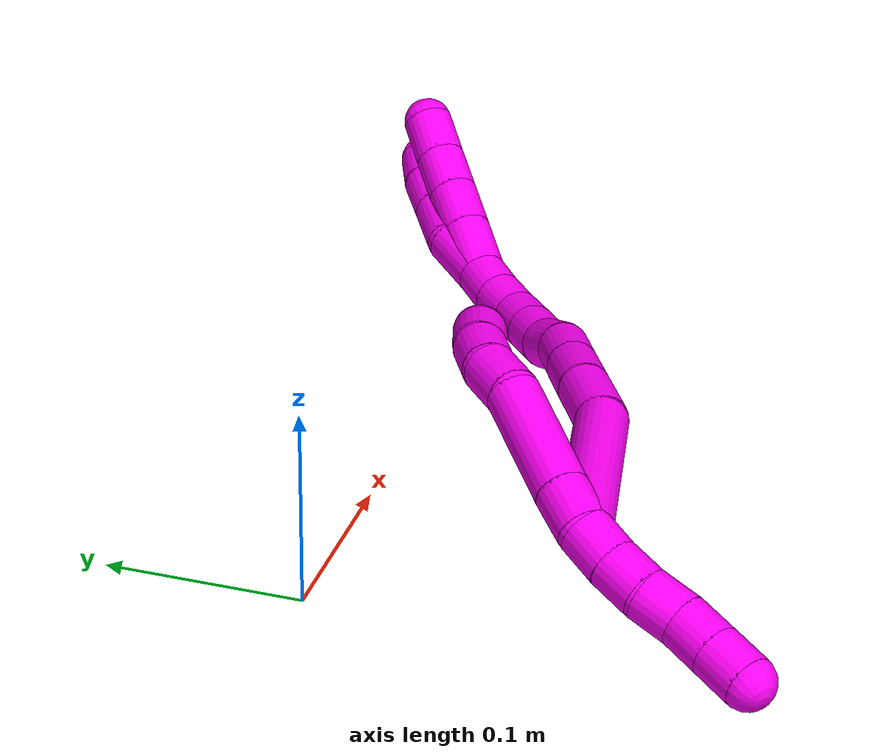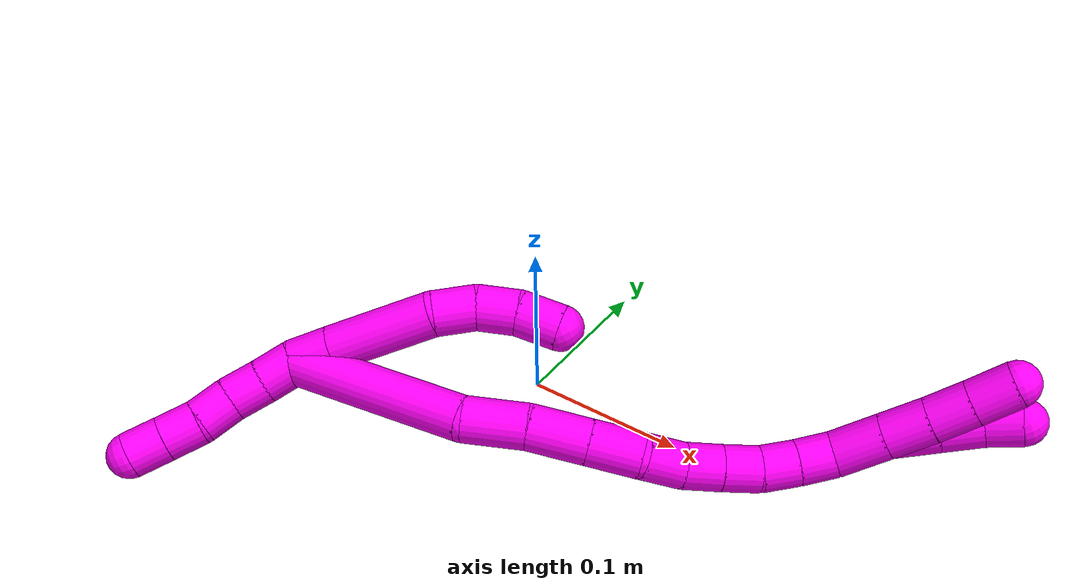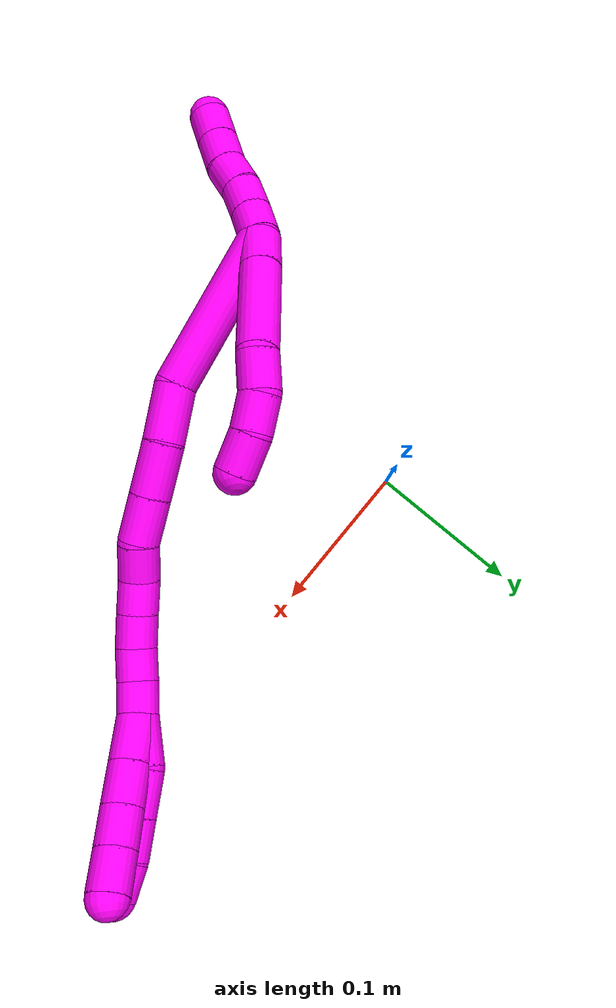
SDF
<sdf version="1.7">
 <world name="default">
  <model name="10">
   <static>0</static>
   <link name="10">
    <collision name="collision-cylinder-e_1_2_8">
     <pose>0.001025 -0.000256 0.011133 0.022969 0.091751 0.001054</pose>
     <geometry><cylinder><radius>0.0125</radius><length>0.022366</length></cylinder></geometry>
     <surface>
      <friction><ode><mu>1.16</mu><mu2>1.16</mu2><slip1>0</slip1><slip2>0</slip2></ode></friction>
      <contact><ode><kp>1e+06</kp><kd>1</kd><max_vel>0</max_vel><min_depth>0.001</min_depth></ode></contact>
     </surface>
    </collision>
    <visual name="visual-cylinder-e_1_2_8">
     <pose>0.001025 -0.000256 0.011133 0.022969 0.091751 0.001054</pose>
     <geometry><cylinder><radius>0.0125</radius><length>0.022366</length></cylinder></geometry>
     <material><ambient>1 0 0.964706 1</ambient></material>
    </visual>
    <collision name="collision-cylinder-e_2_8_9">
     <pose>0.005826 -0.001879 0.050804 0.047898 0.131433 0.003153</pose>
     <geometry><cylinder><radius>0.0125</radius><length>0.057639</length></cylinder></geometry>
     <surface>
      <friction><ode><mu>1.16</mu><mu2>1.16</mu2><slip1>0</slip1><slip2>0</slip2></ode></friction>
      <contact><ode><kp>1e+06</kp><kd>1</kd><max_vel>0</max_vel><min_depth>0.001</min_depth></ode></contact>
     </surface>
    </collision>
    <visual name="visual-cylinder-e_2_8_9">
     <pose>0.005826 -0.001879 0.050804 0.047898 0.131433 0.003153</pose>
     <geometry><cylinder><radius>0.0125</radius><length>0.057639</length></cylinder></geometry>
     <material><ambient>1 0 0.964706 1</ambient></material>
    </visual>
    <collision name="collision-cylinder-e_3_9_10">
     <pose>0.011243 -0.000354 0.090675 -0.249946 0.139301 -0.017528</pose>
     <geometry><cylinder><radius>0.0125</radius><length>0.02362</length></cylinder></geometry>
     <surface>
      <friction><ode><mu>1.16</mu><mu2>1.16</mu2><slip1>0</slip1><slip2>0</slip2></ode></friction>
      <contact><ode><kp>1e+06</kp><kd>1</kd><max_vel>0</max_vel><min_depth>0.001</min_depth></ode></contact>
     </surface>
    </collision>
    <visual name="visual-cylinder-e_3_9_10">
     <pose>0.011243 -0.000354 0.090675 -0.249946 0.139301 -0.017528</pose>
     <geometry><cylinder><radius>0.0125</radius><length>0.02362</length></cylinder></geometry>
     <material><ambient>1 0 0.964706 1</ambient></material>
    </visual>
    <collision name="collision-cylinder-e_4_10_11">
     <pose>0.017681 0.005685 0.111701 -0.313828 0.43999 -0.070729</pose>
     <geometry><cylinder><radius>0.0125</radius><length>0.022529</length></cylinder></geometry>
     <surface>
      <friction><ode><mu>1.16</mu><mu2>1.16</mu2><slip1>0</slip1><slip2>0</slip2></ode></friction>
      <contact><ode><kp>1e+06</kp><kd>1</kd><max_vel>0</max_vel><min_depth>0.001</min_depth></ode></contact>
     </surface>
    </collision>
    <visual name="visual-cylinder-e_4_10_11">
     <pose>0.017681 0.005685 0.111701 -0.313828 0.43999 -0.070729</pose>
     <geometry><cylinder><radius>0.0125</radius><length>0.022529</length></cylinder></geometry>
     <material><ambient>1 0 0.964706 1</ambient></material>
    </visual>
    <collision name="collision-cylinder-e_5_11_6">
     <pose>0.029603 0.0128 0.130092 -0.428104 0.640456 -0.143937</pose>
     <geometry><cylinder><radius>0.0125</radius><length>0.023845</length></cylinder></geometry>
     <surface>
      <friction><ode><mu>1.16</mu><mu2>1.16</mu2><slip1>0</slip1><slip2>0</slip2></ode></friction>
      <contact><ode><kp>1e+06</kp><kd>1</kd><max_vel>0</max_vel><min_depth>0.001</min_depth></ode></contact>
     </surface>
    </collision>
    <visual name="visual-cylinder-e_5_11_6">
     <pose>0.029603 0.0128 0.130092 -0.428104 0.640456 -0.143937</pose>
     <geometry><cylinder><radius>0.0125</radius><length>0.023845</length></cylinder></geometry>
     <material><ambient>1 0 0.964706 1</ambient></material>
    </visual>
    <collision name="collision-cylinder-e_1_2_12">
     <pose>0.001549 0.000255 -0.009876 -3.11582 0.155575 -2.81391</pose>
     <geometry><cylinder><radius>0.0125</radius><length>0.02</length></cylinder></geometry>
     <surface>
      <friction><ode><mu>1.16</mu><mu2>1.16</mu2><slip1>0</slip1><slip2>0</slip2></ode></friction>
      <contact><ode><kp>1e+06</kp><kd>1</kd><max_vel>0</max_vel><min_depth>0.001</min_depth></ode></contact>
     </surface>
    </collision>
    <visual name="visual-cylinder-e_1_2_12">
     <pose>0.001549 0.000255 -0.009876 -3.11582 0.155575 -2.81391</pose>
     <geometry><cylinder><radius>0.0125</radius><length>0.02</length></cylinder></geometry>
     <material><ambient>1 0 0.964706 1</ambient></material>
    </visual>
    <collision name="collision-cylinder-e_2_12_13">
     <pose>0.004984 -0.000242 -0.029544 3.06504 0.18959 2.37585</pose>
     <geometry><cylinder><radius>0.0125</radius><length>0.02</length></cylinder></geometry>
     <surface>
      <friction><ode><mu>1.16</mu><mu2>1.16</mu2><slip1>0</slip1><slip2>0</slip2></ode></friction>
      <contact><ode><kp>1e+06</kp><kd>1</kd><max_vel>0</max_vel><min_depth>0.001</min_depth></ode></contact>
     </surface>
    </collision>
    <visual name="visual-cylinder-e_2_12_13">
     <pose>0.004984 -0.000242 -0.029544 3.06504 0.18959 2.37585</pose>
     <geometry><cylinder><radius>0.0125</radius><length>0.02</length></cylinder></geometry>
     <material><ambient>1 0 0.964706 1</ambient></material>
    </visual>
    <collision name="collision-cylinder-e_3_13_14">
     <pose>0.010373 -0.001906 -0.048657 3.04398 0.358077 2.61436</pose>
     <geometry><cylinder><radius>0.0125</radius><length>0.02</length></cylinder></geometry>
     <surface>
      <friction><ode><mu>1.16</mu><mu2>1.16</mu2><slip1>0</slip1><slip2>0</slip2></ode></friction>
      <contact><ode><kp>1e+06</kp><kd>1</kd><max_vel>0</max_vel><min_depth>0.001</min_depth></ode></contact>
     </surface>
    </collision>
    <visual name="visual-cylinder-e_3_13_14">
     <pose>0.010373 -0.001906 -0.048657 3.04398 0.358077 2.61436</pose>
     <geometry><cylinder><radius>0.0125</radius><length>0.02</length></cylinder></geometry>
     <material><ambient>1 0 0.964706 1</ambient></material>
    </visual>
    <collision name="collision-cylinder-e_4_14_15">
     <pose>0.015291 -0.003931 -0.067815 3.02893 0.141865 1.79987</pose>
     <geometry><cylinder><radius>0.0125</radius><length>0.02</length></cylinder></geometry>
     <surface>
      <friction><ode><mu>1.16</mu><mu2>1.16</mu2><slip1>0</slip1><slip2>0</slip2></ode></friction>
      <contact><ode><kp>1e+06</kp><kd>1</kd><max_vel>0</max_vel><min_depth>0.001</min_depth></ode></contact>
     </surface>
    </collision>
    <visual name="visual-cylinder-e_4_14_15">
     <pose>0.015291 -0.003931 -0.067815 3.02893 0.141865 1.79987</pose>
     <geometry><cylinder><radius>0.0125</radius><length>0.02</length></cylinder></geometry>
     <material><ambient>1 0 0.964706 1</ambient></material>
    </visual>
    <collision name="collision-cylinder-e_5_15_5">
     <pose>0.01806 -0.006163 -0.087496 3.02842 0.13593 1.75344</pose>
     <geometry><cylinder><radius>0.0125</radius><length>0.02</length></cylinder></geometry>
     <surface>
      <friction><ode><mu>1.16</mu><mu2>1.16</mu2><slip1>0</slip1><slip2>0</slip2></ode></friction>
      <contact><ode><kp>1e+06</kp><kd>1</kd><max_vel>0</max_vel><min_depth>0.001</min_depth></ode></contact>
     </surface>
    </collision>
    <visual name="visual-cylinder-e_5_15_5">
     <pose>0.01806 -0.006163 -0.087496 3.02842 0.13593 1.75344</pose>
     <geometry><cylinder><radius>0.0125</radius><length>0.02</length></cylinder></geometry>
     <material><ambient>1 0 0.964706 1</ambient></material>
    </visual>
    <collision name="collision-cylinder-e_1_2_16">
     <pose>0.033195 0.007599 0.037033 -0.202381 0.720565 -0.076466</pose>
     <geometry><cylinder><radius>0.0125</radius><length>0.100619</length></cylinder></geometry>
     <surface>
      <friction><ode><mu>1.16</mu><mu2>1.16</mu2><slip1>0</slip1><slip2>0</slip2></ode></friction>
      <contact><ode><kp>1e+06</kp><kd>1</kd><max_vel>0</max_vel><min_depth>0.001</min_depth></ode></contact>
     </surface>
    </collision>
    <visual name="visual-cylinder-e_1_2_16">
     <pose>0.033195 0.007599 0.037033 -0.202381 0.720565 -0.076466</pose>
     <geometry><cylinder><radius>0.0125</radius><length>0.100619</length></cylinder></geometry>
     <material><ambient>1 0 0.964706 1</ambient></material>
    </visual>
    <collision name="collision-cylinder-e_2_16_17">
     <pose>0.073405 0.020054 0.088936 -0.315654 0.421595 -0.068083</pose>
     <geometry><cylinder><radius>0.0125</radius><length>0.034288</length></cylinder></geometry>
     <surface>
      <friction><ode><mu>1.16</mu><mu2>1.16</mu2><slip1>0</slip1><slip2>0</slip2></ode></friction>
      <contact><ode><kp>1e+06</kp><kd>1</kd><max_vel>0</max_vel><min_depth>0.001</min_depth></ode></contact>
     </surface>
    </collision>
    <visual name="visual-cylinder-e_2_16_17">
     <pose>0.073405 0.020054 0.088936 -0.315654 0.421595 -0.068083</pose>
     <geometry><cylinder><radius>0.0125</radius><length>0.034288</length></cylinder></geometry>
     <material><ambient>1 0 0.964706 1</ambient></material>
    </visual>
    <collision name="collision-cylinder-e_3_17_18">
     <pose>0.088295 0.030897 0.116766 -0.432724 0.504038 -0.113075</pose>
     <geometry><cylinder><radius>0.0125</radius><length>0.032609</length></cylinder></geometry>
     <surface>
      <friction><ode><mu>1.16</mu><mu2>1.16</mu2><slip1>0</slip1><slip2>0</slip2></ode></friction>
      <contact><ode><kp>1e+06</kp><kd>1</kd><max_vel>0</max_vel><min_depth>0.001</min_depth></ode></contact>
     </surface>
    </collision>
    <visual name="visual-cylinder-e_3_17_18">
     <pose>0.088295 0.030897 0.116766 -0.432724 0.504038 -0.113075</pose>
     <geometry><cylinder><radius>0.0125</radius><length>0.032609</length></cylinder></geometry>
     <material><ambient>1 0 0.964706 1</ambient></material>
    </visual>
    <collision name="collision-cylinder-e_4_18_19">
     <pose>0.103126 0.042085 0.141062 -0.430247 0.508822 -0.11352</pose>
     <geometry><cylinder><radius>0.0125</radius><length>0.028561</length></cylinder></geometry>
     <surface>
      <friction><ode><mu>1.16</mu><mu2>1.16</mu2><slip1>0</slip1><slip2>0</slip2></ode></friction>
      <contact><ode><kp>1e+06</kp><kd>1</kd><max_vel>0</max_vel><min_depth>0.001</min_depth></ode></contact>
     </surface>
    </collision>
    <visual name="visual-cylinder-e_4_18_19">
     <pose>0.103126 0.042085 0.141062 -0.430247 0.508822 -0.11352</pose>
     <geometry><cylinder><radius>0.0125</radius><length>0.028561</length></cylinder></geometry>
     <material><ambient>1 0 0.964706 1</ambient></material>
    </visual>
    <collision name="collision-cylinder-e_5_19_20">
     <pose>0.113527 0.054078 0.160856 -0.676442 0.307399 -0.108876</pose>
     <geometry><cylinder><radius>0.0125</radius><length>0.022764</length></cylinder></geometry>
     <surface>
      <friction><ode><mu>1.16</mu><mu2>1.16</mu2><slip1>0</slip1><slip2>0</slip2></ode></friction>
      <contact><ode><kp>1e+06</kp><kd>1</kd><max_vel>0</max_vel><min_depth>0.001</min_depth></ode></contact>
     </surface>
    </collision>
    <visual name="visual-cylinder-e_5_19_20">
     <pose>0.113527 0.054078 0.160856 -0.676442 0.307399 -0.108876</pose>
     <geometry><cylinder><radius>0.0125</radius><length>0.022764</length></cylinder></geometry>
     <material><ambient>1 0 0.964706 1</ambient></material>
    </visual>
    <collision name="collision-cylinder-e_6_20_21">
     <pose>0.11997 0.064746 0.178385 -0.403927 0.295179 -0.060863</pose>
     <geometry><cylinder><radius>0.0125</radius><length>0.020618</length></cylinder></geometry>
     <surface>
      <friction><ode><mu>1.16</mu><mu2>1.16</mu2><slip1>0</slip1><slip2>0</slip2></ode></friction>
      <contact><ode><kp>1e+06</kp><kd>1</kd><max_vel>0</max_vel><min_depth>0.001</min_depth></ode></contact>
     </surface>
    </collision>
    <visual name="visual-cylinder-e_6_20_21">
     <pose>0.11997 0.064746 0.178385 -0.403927 0.295179 -0.060863</pose>
     <geometry><cylinder><radius>0.0125</radius><length>0.020618</length></cylinder></geometry>
     <material><ambient>1 0 0.964706 1</ambient></material>
    </visual>
    <collision name="collision-cylinder-e_7_21_22">
     <pose>0.125723 0.072358 0.19657 -0.388923 0.272598 -0.05401</pose>
     <geometry><cylinder><radius>0.0125</radius><length>0.020457</length></cylinder></geometry>
     <surface>
      <friction><ode><mu>1.16</mu><mu2>1.16</mu2><slip1>0</slip1><slip2>0</slip2></ode></friction>
      <contact><ode><kp>1e+06</kp><kd>1</kd><max_vel>0</max_vel><min_depth>0.001</min_depth></ode></contact>
     </surface>
    </collision>
    <visual name="visual-cylinder-e_7_21_22">
     <pose>0.125723 0.072358 0.19657 -0.388923 0.272598 -0.05401</pose>
     <geometry><cylinder><radius>0.0125</radius><length>0.020457</length></cylinder></geometry>
     <material><ambient>1 0 0.964706 1</ambient></material>
    </visual>
    <collision name="collision-cylinder-e_8_22_23">
     <pose>0.129755 0.078465 0.215328 -0.241195 0.128024 -0.015536</pose>
     <geometry><cylinder><radius>0.0125</radius><length>0.020025</length></cylinder></geometry>
     <surface>
      <friction><ode><mu>1.16</mu><mu2>1.16</mu2><slip1>0</slip1><slip2>0</slip2></ode></friction>
      <contact><ode><kp>1e+06</kp><kd>1</kd><max_vel>0</max_vel><min_depth>0.001</min_depth></ode></contact>
     </surface>
    </collision>
    <visual name="visual-cylinder-e_8_22_23">
     <pose>0.129755 0.078465 0.215328 -0.241195 0.128024 -0.015536</pose>
     <geometry><cylinder><radius>0.0125</radius><length>0.020025</length></cylinder></geometry>
     <material><ambient>1 0 0.964706 1</ambient></material>
    </visual>
    <collision name="collision-cylinder-e_9_23_1">
     <pose>0.132241 0.082232 0.23483 -0.140498 0.120656 -0.0085</pose>
     <geometry><cylinder><radius>0.0125</radius><length>0.020059</length></cylinder></geometry>
     <surface>
      <friction><ode><mu>1.16</mu><mu2>1.16</mu2><slip1>0</slip1><slip2>0</slip2></ode></friction>
      <contact><ode><kp>1e+06</kp><kd>1</kd><max_vel>0</max_vel><min_depth>0.001</min_depth></ode></contact>
     </surface>
    </collision>
    <visual name="visual-cylinder-e_9_23_1">
     <pose>0.132241 0.082232 0.23483 -0.140498 0.120656 -0.0085</pose>
     <geometry><cylinder><radius>0.0125</radius><length>0.020059</length></cylinder></geometry>
     <material><ambient>1 0 0.964706 1</ambient></material>
    </visual>
    <collision name="collision-cylinder-e_1_1_24">
     <pose>0.13571 0.081049 0.258549 0.183827 0.159104 0.014696</pose>
     <geometry><cylinder><radius>0.0125</radius><length>0.028558</length></cylinder></geometry>
     <surface>
      <friction><ode><mu>1.16</mu><mu2>1.16</mu2><slip1>0</slip1><slip2>0</slip2></ode></friction>
      <contact><ode><kp>1e+06</kp><kd>1</kd><max_vel>0</max_vel><min_depth>0.001</min_depth></ode></contact>
     </surface>
    </collision>
    <visual name="visual-cylinder-e_1_1_24">
     <pose>0.13571 0.081049 0.258549 0.183827 0.159104 0.014696</pose>
     <geometry><cylinder><radius>0.0125</radius><length>0.028558</length></cylinder></geometry>
     <material><ambient>1 0 0.964706 1</ambient></material>
    </visual>
    <collision name="collision-cylinder-e_2_24_25">
     <pose>0.139909 0.076227 0.284378 0.1854 0.157727 0.014694</pose>
     <geometry><cylinder><radius>0.0125</radius><length>0.024659</length></cylinder></geometry>
     <surface>
      <friction><ode><mu>1.16</mu><mu2>1.16</mu2><slip1>0</slip1><slip2>0</slip2></ode></friction>
      <contact><ode><kp>1e+06</kp><kd>1</kd><max_vel>0</max_vel><min_depth>0.001</min_depth></ode></contact>
     </surface>
    </collision>
    <visual name="visual-cylinder-e_2_24_25">
     <pose>0.139909 0.076227 0.284378 0.1854 0.157727 0.014694</pose>
     <geometry><cylinder><radius>0.0125</radius><length>0.024659</length></cylinder></geometry>
     <material><ambient>1 0 0.964706 1</ambient></material>
    </visual>
    <collision name="collision-cylinder-e_3_25_26">
     <pose>0.143339 0.071543 0.307468 0.215951 0.130425 0.014157</pose>
     <geometry><cylinder><radius>0.0125</radius><length>0.022968</length></cylinder></geometry>
     <surface>
      <friction><ode><mu>1.16</mu><mu2>1.16</mu2><slip1>0</slip1><slip2>0</slip2></ode></friction>
      <contact><ode><kp>1e+06</kp><kd>1</kd><max_vel>0</max_vel><min_depth>0.001</min_depth></ode></contact>
     </surface>
    </collision>
    <visual name="visual-cylinder-e_3_25_26">
     <pose>0.143339 0.071543 0.307468 0.215951 0.130425 0.014157</pose>
     <geometry><cylinder><radius>0.0125</radius><length>0.022968</length></cylinder></geometry>
     <material><ambient>1 0 0.964706 1</ambient></material>
    </visual>
    <collision name="collision-cylinder-e_4_26_4">
     <pose>0.146266 0.066229 0.330056 0.245555 0.120698 0.014912</pose>
     <geometry><cylinder><radius>0.0125</radius><length>0.023815</length></cylinder></geometry>
     <surface>
      <friction><ode><mu>1.16</mu><mu2>1.16</mu2><slip1>0</slip1><slip2>0</slip2></ode></friction>
      <contact><ode><kp>1e+06</kp><kd>1</kd><max_vel>0</max_vel><min_depth>0.001</min_depth></ode></contact>
     </surface>
    </collision>
    <visual name="visual-cylinder-e_4_26_4">
     <pose>0.146266 0.066229 0.330056 0.245555 0.120698 0.014912</pose>
     <geometry><cylinder><radius>0.0125</radius><length>0.023815</length></cylinder></geometry>
     <material><ambient>1 0 0.964706 1</ambient></material>
    </visual>
    <collision name="collision-cylinder-e_1_1_27">
     <pose>0.133529 0.085347 0.259586 -0.114984 0.005418 -0.000312</pose>
     <geometry><cylinder><radius>0.0125</radius><length>0.029995</length></cylinder></geometry>
     <surface>
      <friction><ode><mu>1.16</mu><mu2>1.16</mu2><slip1>0</slip1><slip2>0</slip2></ode></friction>
      <contact><ode><kp>1e+06</kp><kd>1</kd><max_vel>0</max_vel><min_depth>0.001</min_depth></ode></contact>
     </surface>
    </collision>
    <visual name="visual-cylinder-e_1_1_27">
     <pose>0.133529 0.085347 0.259586 -0.114984 0.005418 -0.000312</pose>
     <geometry><cylinder><radius>0.0125</radius><length>0.029995</length></cylinder></geometry>
     <material><ambient>1 0 0.964706 1</ambient></material>
    </visual>
    <collision name="collision-cylinder-e_2_27_28">
     <pose>0.137396 0.087567 0.287134 -0.039508 0.290565 -0.005781</pose>
     <geometry><cylinder><radius>0.0125</radius><length>0.026425</length></cylinder></geometry>
     <surface>
      <friction><ode><mu>1.16</mu><mu2>1.16</mu2><slip1>0</slip1><slip2>0</slip2></ode></friction>
      <contact><ode><kp>1e+06</kp><kd>1</kd><max_vel>0</max_vel><min_depth>0.001</min_depth></ode></contact>
     </surface>
    </collision>
    <visual name="visual-cylinder-e_2_27_28">
     <pose>0.137396 0.087567 0.287134 -0.039508 0.290565 -0.005781</pose>
     <geometry><cylinder><radius>0.0125</radius><length>0.026425</length></cylinder></geometry>
     <material><ambient>1 0 0.964706 1</ambient></material>
    </visual>
    <collision name="collision-cylinder-e_3_28_29">
     <pose>0.144517 0.088598 0.310946 -0.047466 0.290078 -0.006934</pose>
     <geometry><cylinder><radius>0.0125</radius><length>0.023327</length></cylinder></geometry>
     <surface>
      <friction><ode><mu>1.16</mu><mu2>1.16</mu2><slip1>0</slip1><slip2>0</slip2></ode></friction>
      <contact><ode><kp>1e+06</kp><kd>1</kd><max_vel>0</max_vel><min_depth>0.001</min_depth></ode></contact>
     </surface>
    </collision>
    <visual name="visual-cylinder-e_3_28_29">
     <pose>0.144517 0.088598 0.310946 -0.047466 0.290078 -0.006934</pose>
     <geometry><cylinder><radius>0.0125</radius><length>0.023327</length></cylinder></geometry>
     <material><ambient>1 0 0.964706 1</ambient></material>
    </visual>
    <collision name="collision-cylinder-e_4_29_3">
     <pose>0.152143 0.089043 0.331282 0.009272 0.43749 0.002061</pose>
     <geometry><cylinder><radius>0.0125</radius><length>0.020253</length></cylinder></geometry>
     <surface>
      <friction><ode><mu>1.16</mu><mu2>1.16</mu2><slip1>0</slip1><slip2>0</slip2></ode></friction>
      <contact><ode><kp>1e+06</kp><kd>1</kd><max_vel>0</max_vel><min_depth>0.001</min_depth></ode></contact>
     </surface>
    </collision>
    <visual name="visual-cylinder-e_4_29_3">
     <pose>0.152143 0.089043 0.331282 0.009272 0.43749 0.002061</pose>
     <geometry><cylinder><radius>0.0125</radius><length>0.020253</length></cylinder></geometry>
     <material><ambient>1 0 0.964706 1</ambient></material>
    </visual>
    <collision name="collision-sphere-3">
     <pose>0.156434 0.088958 0.340454 0 -0 0</pose>
     <geometry><sphere><radius>0.0125</radius></sphere></geometry>
     <surface>
      <friction><ode><mu>1.16</mu><mu2>1.16</mu2><slip1>0</slip1><slip2>0</slip2></ode></friction>
      <contact><ode><kp>1e+06</kp><kd>1</kd><max_vel>0</max_vel><min_depth>0.001</min_depth></ode></contact>
     </surface>
    </collision>
    <visual name="visual-sphere-3">
     <pose>0.156434 0.088958 0.340454 0 -0 0</pose>
     <geometry><sphere><radius>0.0125</radius></sphere></geometry>
     <material><ambient>1 0 0.964706 1</ambient></material>
    </visual>
    <collision name="collision-sphere-29">
     <pose>0.147853 0.089128 0.322109 0 -0 0</pose>
     <geometry><sphere><radius>0.0125</radius></sphere></geometry>
     <surface>
      <friction><ode><mu>1.16</mu><mu2>1.16</mu2><slip1>0</slip1><slip2>0</slip2></ode></friction>
      <contact><ode><kp>1e+06</kp><kd>1</kd><max_vel>0</max_vel><min_depth>0.001</min_depth></ode></contact>
     </surface>
    </collision>
    <visual name="visual-sphere-29">
     <pose>0.147853 0.089128 0.322109 0 -0 0</pose>
     <geometry><sphere><radius>0.0125</radius></sphere></geometry>
     <material><ambient>1 0 0.964706 1</ambient></material>
    </visual>
    <collision name="collision-sphere-28">
     <pose>0.141181 0.088067 0.299783 0 -0 0</pose>
     <geometry><sphere><radius>0.0125</radius></sphere></geometry>
     <surface>
      <friction><ode><mu>1.16</mu><mu2>1.16</mu2><slip1>0</slip1><slip2>0</slip2></ode></friction>
      <contact><ode><kp>1e+06</kp><kd>1</kd><max_vel>0</max_vel><min_depth>0.001</min_depth></ode></contact>
     </surface>
    </collision>
    <visual name="visual-sphere-28">
     <pose>0.141181 0.088067 0.299783 0 -0 0</pose>
     <geometry><sphere><radius>0.0125</radius></sphere></geometry>
     <material><ambient>1 0 0.964706 1</ambient></material>
    </visual>
    <collision name="collision-sphere-27">
     <pose>0.13361 0.087067 0.274485 0 -0 0</pose>
     <geometry><sphere><radius>0.0125</radius></sphere></geometry>
     <surface>
      <friction><ode><mu>1.16</mu><mu2>1.16</mu2><slip1>0</slip1><slip2>0</slip2></ode></friction>
      <contact><ode><kp>1e+06</kp><kd>1</kd><max_vel>0</max_vel><min_depth>0.001</min_depth></ode></contact>
     </surface>
    </collision>
    <visual name="visual-sphere-27">
     <pose>0.13361 0.087067 0.274485 0 -0 0</pose>
     <geometry><sphere><radius>0.0125</radius></sphere></geometry>
     <material><ambient>1 0 0.964706 1</ambient></material>
    </visual>
    <collision name="collision-sphere-4">
     <pose>0.1477 0.063356 0.341523 0 -0 0</pose>
     <geometry><sphere><radius>0.0125</radius></sphere></geometry>
     <surface>
      <friction><ode><mu>1.16</mu><mu2>1.16</mu2><slip1>0</slip1><slip2>0</slip2></ode></friction>
      <contact><ode><kp>1e+06</kp><kd>1</kd><max_vel>0</max_vel><min_depth>0.001</min_depth></ode></contact>
     </surface>
    </collision>
    <visual name="visual-sphere-4">
     <pose>0.1477 0.063356 0.341523 0 -0 0</pose>
     <geometry><sphere><radius>0.0125</radius></sphere></geometry>
     <material><ambient>1 0 0.964706 1</ambient></material>
    </visual>
    <collision name="collision-sphere-26">
     <pose>0.144833 0.069103 0.31859 0 -0 0</pose>
     <geometry><sphere><radius>0.0125</radius></sphere></geometry>
     <surface>
      <friction><ode><mu>1.16</mu><mu2>1.16</mu2><slip1>0</slip1><slip2>0</slip2></ode></friction>
      <contact><ode><kp>1e+06</kp><kd>1</kd><max_vel>0</max_vel><min_depth>0.001</min_depth></ode></contact>
     </surface>
    </collision>
    <visual name="visual-sphere-26">
     <pose>0.144833 0.069103 0.31859 0 -0 0</pose>
     <geometry><sphere><radius>0.0125</radius></sphere></geometry>
     <material><ambient>1 0 0.964706 1</ambient></material>
    </visual>
    <collision name="collision-sphere-25">
     <pose>0.141845 0.073983 0.296346 0 -0 0</pose>
     <geometry><sphere><radius>0.0125</radius></sphere></geometry>
     <surface>
      <friction><ode><mu>1.16</mu><mu2>1.16</mu2><slip1>0</slip1><slip2>0</slip2></ode></friction>
      <contact><ode><kp>1e+06</kp><kd>1</kd><max_vel>0</max_vel><min_depth>0.001</min_depth></ode></contact>
     </surface>
    </collision>
    <visual name="visual-sphere-25">
     <pose>0.141845 0.073983 0.296346 0 -0 0</pose>
     <geometry><sphere><radius>0.0125</radius></sphere></geometry>
     <material><ambient>1 0 0.964706 1</ambient></material>
    </visual>
    <collision name="collision-sphere-24">
     <pose>0.137972 0.078472 0.272411 0 -0 0</pose>
     <geometry><sphere><radius>0.0125</radius></sphere></geometry>
     <surface>
      <friction><ode><mu>1.16</mu><mu2>1.16</mu2><slip1>0</slip1><slip2>0</slip2></ode></friction>
      <contact><ode><kp>1e+06</kp><kd>1</kd><max_vel>0</max_vel><min_depth>0.001</min_depth></ode></contact>
     </surface>
    </collision>
    <visual name="visual-sphere-24">
     <pose>0.137972 0.078472 0.272411 0 -0 0</pose>
     <geometry><sphere><radius>0.0125</radius></sphere></geometry>
     <material><ambient>1 0 0.964706 1</ambient></material>
    </visual>
    <collision name="collision-sphere-1">
     <pose>0.133448 0.083626 0.244688 0 -0 0</pose>
     <geometry><sphere><radius>0.0125</radius></sphere></geometry>
     <surface>
      <friction><ode><mu>1.16</mu><mu2>1.16</mu2><slip1>0</slip1><slip2>0</slip2></ode></friction>
      <contact><ode><kp>1e+06</kp><kd>1</kd><max_vel>0</max_vel><min_depth>0.001</min_depth></ode></contact>
     </surface>
    </collision>
    <visual name="visual-sphere-1">
     <pose>0.133448 0.083626 0.244688 0 -0 0</pose>
     <geometry><sphere><radius>0.0125</radius></sphere></geometry>
     <material><ambient>1 0 0.964706 1</ambient></material>
    </visual>
    <collision name="collision-sphere-23">
     <pose>0.131033 0.080838 0.224972 0 -0 0</pose>
     <geometry><sphere><radius>0.0125</radius></sphere></geometry>
     <surface>
      <friction><ode><mu>1.16</mu><mu2>1.16</mu2><slip1>0</slip1><slip2>0</slip2></ode></friction>
      <contact><ode><kp>1e+06</kp><kd>1</kd><max_vel>0</max_vel><min_depth>0.001</min_depth></ode></contact>
     </surface>
    </collision>
    <visual name="visual-sphere-23">
     <pose>0.131033 0.080838 0.224972 0 -0 0</pose>
     <geometry><sphere><radius>0.0125</radius></sphere></geometry>
     <material><ambient>1 0 0.964706 1</ambient></material>
    </visual>
    <collision name="collision-sphere-22">
     <pose>0.128477 0.076093 0.205685 0 -0 0</pose>
     <geometry><sphere><radius>0.0125</radius></sphere></geometry>
     <surface>
      <friction><ode><mu>1.16</mu><mu2>1.16</mu2><slip1>0</slip1><slip2>0</slip2></ode></friction>
      <contact><ode><kp>1e+06</kp><kd>1</kd><max_vel>0</max_vel><min_depth>0.001</min_depth></ode></contact>
     </surface>
    </collision>
    <visual name="visual-sphere-22">
     <pose>0.128477 0.076093 0.205685 0 -0 0</pose>
     <geometry><sphere><radius>0.0125</radius></sphere></geometry>
     <material><ambient>1 0 0.964706 1</ambient></material>
    </visual>
    <collision name="collision-sphere-21">
     <pose>0.122969 0.068623 0.187455 0 -0 0</pose>
     <geometry><sphere><radius>0.0125</radius></sphere></geometry>
     <surface>
      <friction><ode><mu>1.16</mu><mu2>1.16</mu2><slip1>0</slip1><slip2>0</slip2></ode></friction>
      <contact><ode><kp>1e+06</kp><kd>1</kd><max_vel>0</max_vel><min_depth>0.001</min_depth></ode></contact>
     </surface>
    </collision>
    <visual name="visual-sphere-21">
     <pose>0.122969 0.068623 0.187455 0 -0 0</pose>
     <geometry><sphere><radius>0.0125</radius></sphere></geometry>
     <material><ambient>1 0 0.964706 1</ambient></material>
    </visual>
    <collision name="collision-sphere-6">
     <pose>0.036728 0.016768 0.138789 0 -0 0</pose>
     <geometry><sphere><radius>0.0125</radius></sphere></geometry>
     <surface>
      <friction><ode><mu>1.16</mu><mu2>1.16</mu2><slip1>0</slip1><slip2>0</slip2></ode></friction>
      <contact><ode><kp>1e+06</kp><kd>1</kd><max_vel>0</max_vel><min_depth>0.001</min_depth></ode></contact>
     </surface>
    </collision>
    <visual name="visual-sphere-6">
     <pose>0.036728 0.016768 0.138789 0 -0 0</pose>
     <geometry><sphere><radius>0.0125</radius></sphere></geometry>
     <material><ambient>1 0 0.964706 1</ambient></material>
    </visual>
    <collision name="collision-sphere-11">
     <pose>0.022479 0.008831 0.121395 0 -0 0</pose>
     <geometry><sphere><radius>0.0125</radius></sphere></geometry>
     <surface>
      <friction><ode><mu>1.16</mu><mu2>1.16</mu2><slip1>0</slip1><slip2>0</slip2></ode></friction>
      <contact><ode><kp>1e+06</kp><kd>1</kd><max_vel>0</max_vel><min_depth>0.001</min_depth></ode></contact>
     </surface>
    </collision>
    <visual name="visual-sphere-11">
     <pose>0.022479 0.008831 0.121395 0 -0 0</pose>
     <geometry><sphere><radius>0.0125</radius></sphere></geometry>
     <material><ambient>1 0 0.964706 1</ambient></material>
    </visual>
    <collision name="collision-sphere-10">
     <pose>0.012883 0.002539 0.102007 0 -0 0</pose>
     <geometry><sphere><radius>0.0125</radius></sphere></geometry>
     <surface>
      <friction><ode><mu>1.16</mu><mu2>1.16</mu2><slip1>0</slip1><slip2>0</slip2></ode></friction>
      <contact><ode><kp>1e+06</kp><kd>1</kd><max_vel>0</max_vel><min_depth>0.001</min_depth></ode></contact>
     </surface>
    </collision>
    <visual name="visual-sphere-10">
     <pose>0.012883 0.002539 0.102007 0 -0 0</pose>
     <geometry><sphere><radius>0.0125</radius></sphere></geometry>
     <material><ambient>1 0 0.964706 1</ambient></material>
    </visual>
    <collision name="collision-sphere-9">
     <pose>0.009603 -0.003247 0.079343 0 -0 0</pose>
     <geometry><sphere><radius>0.0125</radius></sphere></geometry>
     <surface>
      <friction><ode><mu>1.16</mu><mu2>1.16</mu2><slip1>0</slip1><slip2>0</slip2></ode></friction>
      <contact><ode><kp>1e+06</kp><kd>1</kd><max_vel>0</max_vel><min_depth>0.001</min_depth></ode></contact>
     </surface>
    </collision>
    <visual name="visual-sphere-9">
     <pose>0.009603 -0.003247 0.079343 0 -0 0</pose>
     <geometry><sphere><radius>0.0125</radius></sphere></geometry>
     <material><ambient>1 0 0.964706 1</ambient></material>
    </visual>
    <collision name="collision-sphere-2">
     <geometry><sphere><radius>0.0125</radius></sphere></geometry>
     <surface>
      <friction><ode><mu>1.16</mu><mu2>1.16</mu2><slip1>0</slip1><slip2>0</slip2></ode></friction>
      <contact><ode><kp>1e+06</kp><kd>1</kd><max_vel>0</max_vel><min_depth>0.001</min_depth></ode></contact>
     </surface>
    </collision>
    <visual name="visual-sphere-2">
     <geometry><sphere><radius>0.0125</radius></sphere></geometry>
     <material><ambient>1 0 0.964706 1</ambient></material>
    </visual>
    <collision name="collision-sphere-19">
     <pose>0.110083 0.047287 0.152397 0 -0 0</pose>
     <geometry><sphere><radius>0.0125</radius></sphere></geometry>
     <surface>
      <friction><ode><mu>1.16</mu><mu2>1.16</mu2><slip1>0</slip1><slip2>0</slip2></ode></friction>
      <contact><ode><kp>1e+06</kp><kd>1</kd><max_vel>0</max_vel><min_depth>0.001</min_depth></ode></contact>
     </surface>
    </collision>
    <visual name="visual-sphere-19">
     <pose>0.110083 0.047287 0.152397 0 -0 0</pose>
     <geometry><sphere><radius>0.0125</radius></sphere></geometry>
     <material><ambient>1 0 0.964706 1</ambient></material>
    </visual>
    <collision name="collision-sphere-8">
     <pose>0.002049 -0.000512 0.022266 0 -0 0</pose>
     <geometry><sphere><radius>0.0125</radius></sphere></geometry>
     <surface>
      <friction><ode><mu>1.16</mu><mu2>1.16</mu2><slip1>0</slip1><slip2>0</slip2></ode></friction>
      <contact><ode><kp>1e+06</kp><kd>1</kd><max_vel>0</max_vel><min_depth>0.001</min_depth></ode></contact>
     </surface>
    </collision>
    <visual name="visual-sphere-8">
     <pose>0.002049 -0.000512 0.022266 0 -0 0</pose>
     <geometry><sphere><radius>0.0125</radius></sphere></geometry>
     <material><ambient>1 0 0.964706 1</ambient></material>
    </visual>
    <collision name="collision-sphere-12">
     <pose>0.003099 0.000509 -0.019752 0 -0 0</pose>
     <geometry><sphere><radius>0.0125</radius></sphere></geometry>
     <surface>
      <friction><ode><mu>1.16</mu><mu2>1.16</mu2><slip1>0</slip1><slip2>0</slip2></ode></friction>
      <contact><ode><kp>1e+06</kp><kd>1</kd><max_vel>0</max_vel><min_depth>0.001</min_depth></ode></contact>
     </surface>
    </collision>
    <visual name="visual-sphere-12">
     <pose>0.003099 0.000509 -0.019752 0 -0 0</pose>
     <geometry><sphere><radius>0.0125</radius></sphere></geometry>
     <material><ambient>1 0 0.964706 1</ambient></material>
    </visual>
    <collision name="collision-sphere-13">
     <pose>0.006868 -0.000993 -0.039336 0 -0 0</pose>
     <geometry><sphere><radius>0.0125</radius></sphere></geometry>
     <surface>
      <friction><ode><mu>1.16</mu><mu2>1.16</mu2><slip1>0</slip1><slip2>0</slip2></ode></friction>
      <contact><ode><kp>1e+06</kp><kd>1</kd><max_vel>0</max_vel><min_depth>0.001</min_depth></ode></contact>
     </surface>
    </collision>
    <visual name="visual-sphere-13">
     <pose>0.006868 -0.000993 -0.039336 0 -0 0</pose>
     <geometry><sphere><radius>0.0125</radius></sphere></geometry>
     <material><ambient>1 0 0.964706 1</ambient></material>
    </visual>
    <collision name="collision-sphere-14">
     <pose>0.013878 -0.002818 -0.057978 0 -0 0</pose>
     <geometry><sphere><radius>0.0125</radius></sphere></geometry>
     <surface>
      <friction><ode><mu>1.16</mu><mu2>1.16</mu2><slip1>0</slip1><slip2>0</slip2></ode></friction>
      <contact><ode><kp>1e+06</kp><kd>1</kd><max_vel>0</max_vel><min_depth>0.001</min_depth></ode></contact>
     </surface>
    </collision>
    <visual name="visual-sphere-14">
     <pose>0.013878 -0.002818 -0.057978 0 -0 0</pose>
     <geometry><sphere><radius>0.0125</radius></sphere></geometry>
     <material><ambient>1 0 0.964706 1</ambient></material>
    </visual>
    <collision name="collision-sphere-15">
     <pose>0.016705 -0.005044 -0.077652 0 -0 0</pose>
     <geometry><sphere><radius>0.0125</radius></sphere></geometry>
     <surface>
      <friction><ode><mu>1.16</mu><mu2>1.16</mu2><slip1>0</slip1><slip2>0</slip2></ode></friction>
      <contact><ode><kp>1e+06</kp><kd>1</kd><max_vel>0</max_vel><min_depth>0.001</min_depth></ode></contact>
     </surface>
    </collision>
    <visual name="visual-sphere-15">
     <pose>0.016705 -0.005044 -0.077652 0 -0 0</pose>
     <geometry><sphere><radius>0.0125</radius></sphere></geometry>
     <material><ambient>1 0 0.964706 1</ambient></material>
    </visual>
    <collision name="collision-sphere-5">
     <pose>0.019416 -0.007282 -0.097341 0 -0 0</pose>
     <geometry><sphere><radius>0.0125</radius></sphere></geometry>
     <surface>
      <friction><ode><mu>1.16</mu><mu2>1.16</mu2><slip1>0</slip1><slip2>0</slip2></ode></friction>
      <contact><ode><kp>1e+06</kp><kd>1</kd><max_vel>0</max_vel><min_depth>0.001</min_depth></ode></contact>
     </surface>
    </collision>
    <visual name="visual-sphere-5">
     <pose>0.019416 -0.007282 -0.097341 0 -0 0</pose>
     <geometry><sphere><radius>0.0125</radius></sphere></geometry>
     <material><ambient>1 0 0.964706 1</ambient></material>
    </visual>
    <collision name="collision-sphere-16">
     <pose>0.066389 0.015197 0.074066 0 -0 0</pose>
     <geometry><sphere><radius>0.0125</radius></sphere></geometry>
     <surface>
      <friction><ode><mu>1.16</mu><mu2>1.16</mu2><slip1>0</slip1><slip2>0</slip2></ode></friction>
      <contact><ode><kp>1e+06</kp><kd>1</kd><max_vel>0</max_vel><min_depth>0.001</min_depth></ode></contact>
     </surface>
    </collision>
    <visual name="visual-sphere-16">
     <pose>0.066389 0.015197 0.074066 0 -0 0</pose>
     <geometry><sphere><radius>0.0125</radius></sphere></geometry>
     <material><ambient>1 0 0.964706 1</ambient></material>
    </visual>
    <collision name="collision-sphere-17">
     <pose>0.080421 0.02491 0.103806 0 -0 0</pose>
     <geometry><sphere><radius>0.0125</radius></sphere></geometry>
     <surface>
      <friction><ode><mu>1.16</mu><mu2>1.16</mu2><slip1>0</slip1><slip2>0</slip2></ode></friction>
      <contact><ode><kp>1e+06</kp><kd>1</kd><max_vel>0</max_vel><min_depth>0.001</min_depth></ode></contact>
     </surface>
    </collision>
    <visual name="visual-sphere-17">
     <pose>0.080421 0.02491 0.103806 0 -0 0</pose>
     <geometry><sphere><radius>0.0125</radius></sphere></geometry>
     <material><ambient>1 0 0.964706 1</ambient></material>
    </visual>
    <collision name="collision-sphere-18">
     <pose>0.09617 0.036884 0.129727 0 -0 0</pose>
     <geometry><sphere><radius>0.0125</radius></sphere></geometry>
     <surface>
      <friction><ode><mu>1.16</mu><mu2>1.16</mu2><slip1>0</slip1><slip2>0</slip2></ode></friction>
      <contact><ode><kp>1e+06</kp><kd>1</kd><max_vel>0</max_vel><min_depth>0.001</min_depth></ode></contact>
     </surface>
    </collision>
    <visual name="visual-sphere-18">
     <pose>0.09617 0.036884 0.129727 0 -0 0</pose>
     <geometry><sphere><radius>0.0125</radius></sphere></geometry>
     <material><ambient>1 0 0.964706 1</ambient></material>
    </visual>
    <collision name="collision-sphere-20">
     <pose>0.116971 0.06087 0.169316 0 -0 0</pose>
     <geometry><sphere><radius>0.0125</radius></sphere></geometry>
     <surface>
      <friction><ode><mu>1.16</mu><mu2>1.16</mu2><slip1>0</slip1><slip2>0</slip2></ode></friction>
      <contact><ode><kp>1e+06</kp><kd>1</kd><max_vel>0</max_vel><min_depth>0.001</min_depth></ode></contact>
     </surface>
    </collision>
    <visual name="visual-sphere-20">
     <pose>0.116971 0.06087 0.169316 0 -0 0</pose>
     <geometry><sphere><radius>0.0125</radius></sphere></geometry>
     <material><ambient>1 0 0.964706 1</ambient></material>
    </visual>
    <inertial>
     <pose>0.073981 0.036211 0.132961 0 -0 0</pose>
     <mass>0.75</mass>
     <inertia>
      <ixx>0.000139</ixx>
      <ixy>0</ixy>
      <ixz>0</ixz>
      <iyy>0.000158</iyy>
      <iyz>0</iyz>
      <izz>-5.7e-05</izz>
     </inertia>
    </inertial>
   </link>
   <pose>-0.05311 -0.147738 0.099447 -1.22843 0.210623 -0.660842</pose>
  </model>
 </world>
</sdf>
